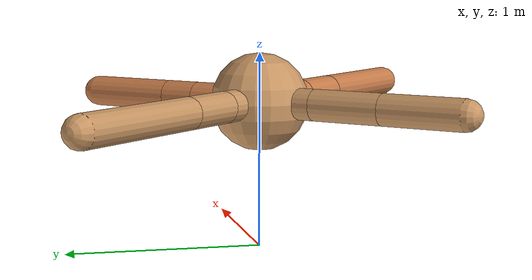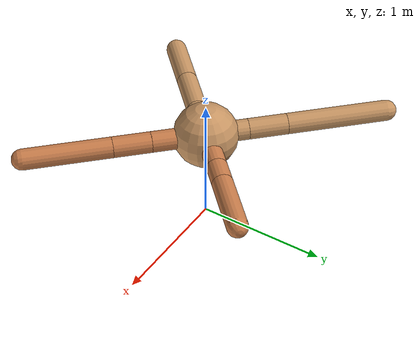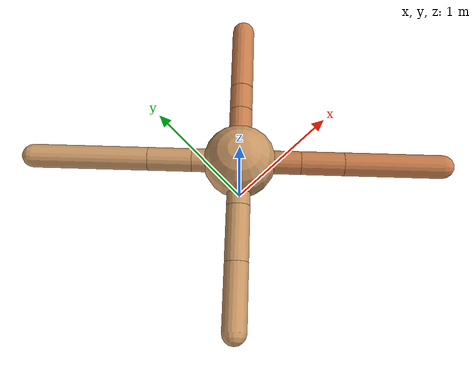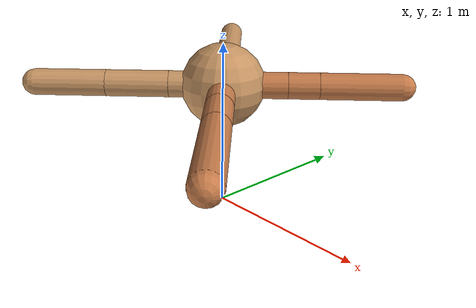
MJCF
<mujoco model="ant">
  <compiler angle="degree" coordinate="local" inertiafromgeom="true" />
  <option integrator="RK4" timestep="0.01" />
  <custom>
    <numeric data="0.0 0.0 0.55 1.0 0.0 0.0 0.0 0.0 1.0 0.0 -1.0 0.0 -1.0 0.0 1.0" name="init_qpos" />
  </custom>
  <default>
    <joint armature="1" damping="1" limited="true" />
    <geom conaffinity="0" condim="3" density="5.0" friction="1.5 0.1 0.1" margin="0.01" rgba="0.8 0.6 0.4 1" />
  </default>
  <worldbody>
    <body name="torso" pos="0 0 0.75">
      <geom name="torso_geom" pos="0 0 0" size="0.25" type="sphere" />

      <body name="front_left_leg" pos="0 0 0">
        <geom fromto="0.0 0.0 0.0 0.27073575459558363 0.27073575459558363 0.0" name="aux_1_geom" size="0.08" type="capsule" rgba=".8 .5 .3 1" />
        <body name="aux_1" pos="0.27073575459558363 0.27073575459558363 0.0">
          <joint axis="0 0 1" name="hip_1" pos="0.0 0.0 0.0" range="-40 40" type="hinge" />
          <geom fromto="0.0 0.0 0.0 0.13033211820565507 0.13033211820565507 0.0" name="left_leg_geom" size="0.08" type="capsule" rgba=".8 .5 .3 1" />
          <body pos="0.13033211820565507 0.13033211820565507 0.0" name="front_left_foot">
            <joint axis="-1 1 0" name="ankle_1" pos="0.0 0.0 0.0" range="30 100" type="hinge" />
            <geom fromto="0.0 0.0 0.0 0.33780039446801075 0.33780039446801075 0.0" name="left_ankle_geom" size="0.08" type="capsule" rgba=".8 .5 .3 1" />
          </body>
        </body>
      </body>
      <body name="front_right_leg" pos="0 0 0">
        <geom fromto="0.0 0.0 0.0 -0.22956593906794406 0.22956593906794406 0.0" name="aux_2_geom" size="0.08" type="capsule" />
        <body name="aux_2" pos="-0.22956593906794406 0.22956593906794406 0.0">
          <joint axis="0 0 1" name="hip_2" pos="0.0 0.0 0.0" range="-40 40" type="hinge" />
          <geom fromto="0.0 0.0 0.0 -0.21260737673545071 0.21260737673545071 0.0" name="right_leg_geom" size="0.08" type="capsule" />
          <body pos="-0.21260737673545071 0.21260737673545071 0.0" name="front_right_foot">
            <joint axis="1 1 0" name="ankle_2" pos="0.0 0.0 0.0" range="-100 -30" type="hinge" />
            <geom fromto="0.0 0.0 0.0 -0.5557753768410086 0.5557753768410086 0.0" name="right_ankle_geom" size="0.08" type="capsule" />
          </body>
        </body>
      </body>
      <body name="left_back_leg" pos="0 0 0">
        <geom fromto="0.0 0.0 0.0 -0.22678093777092045 -0.22678093777092045 0.0" name="aux_3_geom" size="0.08" type="capsule" />
        <body name="aux_3" pos="-0.22678093777092045 -0.22678093777092045 0.0">
          <joint axis="0 0 1" name="hip_3" pos="0.0 0.0 0.0" range="-40 40" type="hinge" />
          <geom fromto="0.0 0.0 0.0 -0.26553097918962154 -0.26553097918962154 0.0" name="back_leg_geom" size="0.08" type="capsule" />
          <body pos="-0.26553097918962154 -0.26553097918962154 0.0" name="left_back_foot">
            <joint axis="-1 1 0" name="ankle_3" pos="0.0 0.0 0.0" range="-100 -30" type="hinge" />
            <geom fromto="0.0 0.0 0.0 -0.30499350699571903 -0.30499350699571903 0.0" name="third_ankle_geom" size="0.08" type="capsule" />
          </body>
        </body>
      </body>
      <body name="right_back_leg" pos="0 0 0">
        <geom fromto="0.0 0.0 0.0 0.29470685239174405 -0.29470685239174405 0.0" name="aux_4_geom" size="0.08" type="capsule" rgba=".8 .5 .3 1" />
        <body name="aux_4" pos="0.29470685239174405 -0.29470685239174405 0.0">
          <joint axis="0 0 1" name="hip_4" pos="0.0 0.0 0.0" range="-40 40" type="hinge" />
          <geom fromto="0.0 0.0 0.0 0.20736115324474286 -0.20736115324474286 0.0" name="rightback_leg_geom" size="0.08" type="capsule" rgba=".8 .5 .3 1" />
          <body pos="0.20736115324474286 -0.20736115324474286 0.0" name="right_back_foot">
            <joint axis="1 1 0" name="ankle_4" pos="0.0 0.0 0.0" range="30 100" type="hinge" />
            <geom fromto="0.0 0.0 0.0 0.4751176180308191 -0.4751176180308191 0.0" name="fourth_ankle_geom" size="0.08" type="capsule" rgba=".8 .5 .3 1" />
          </body>
        </body>
      </body>
    </body>
  </worldbody>
  <actuator>
    <motor ctrllimited="true" ctrlrange="-1.0 1.0" joint="hip_4" gear="150" />
    <motor ctrllimited="true" ctrlrange="-1.0 1.0" joint="ankle_4" gear="150" />
    <motor ctrllimited="true" ctrlrange="-1.0 1.0" joint="hip_1" gear="150" />
    <motor ctrllimited="true" ctrlrange="-1.0 1.0" joint="ankle_1" gear="150" />
    <motor ctrllimited="true" ctrlrange="-1.0 1.0" joint="hip_2" gear="150" />
    <motor ctrllimited="true" ctrlrange="-1.0 1.0" joint="ankle_2" gear="150" />
    <motor ctrllimited="true" ctrlrange="-1.0 1.0" joint="hip_3" gear="150" />
    <motor ctrllimited="true" ctrlrange="-1.0 1.0" joint="ankle_3" gear="150" />
  </actuator>
</mujoco>
